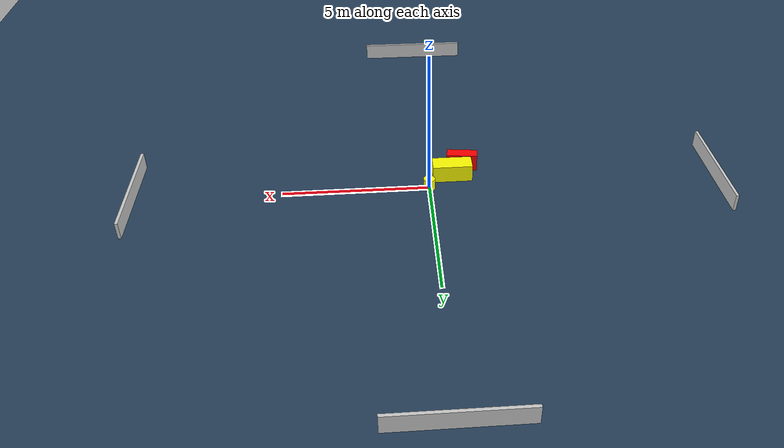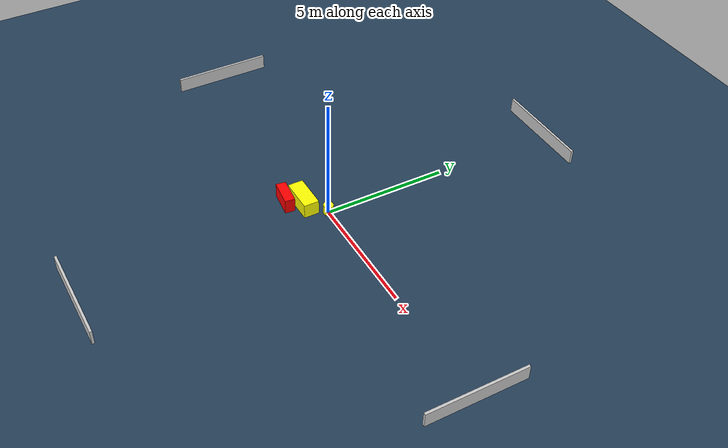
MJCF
<?xml version="1.0" ?>
<mujoco model="generated_environment">
  <option timestep="0.01" integrator="RK4" cone="elliptic"/>
  <default>
    <geom density="1"/>
  </default>
  <asset>
    <texture builtin="gradient" height="3072" name="skybox" rgb1="0.3 0.5 0.7" rgb2="0 0 0" type="skybox" width="512"/>
    <texture builtin="checker" height="300" name="groundplane" rgb1="0.2 0.3 0.4" rgb2="0.1 0.2 0.3" type="2d" width="300"/>
    <material name="groundplane" reflectance="0.2" texrepeat="5 5" texture="groundplane"/>
  </asset>
  <worldbody>
    <light dir="0 0 -1" directional="true" pos="0 0 1.5"/>
    <geom condim="3" friction="0.5 0.005 0.001" material="groundplane" name="floor" pos="0 0 0" size="0 0 0.05" type="plane"/>
    <body name="walls">
      <geom name="wall_1" condim="4" pos="-10.0 0.0 0.3" rgba="0.800000011920929 0.800000011920929 0.800000011920929 1.0" size="0.05 2.0 0.3" type="box"/>
      <geom name="wall_2" condim="4" pos="10.0 0.0 0.3" rgba="0.800000011920929 0.800000011920929 0.800000011920929 1.0" size="0.05 2.0 0.3" type="box"/>
      <geom name="wall_3" condim="4" pos="0.0 -10.0 0.3" rgba="0.800000011920929 0.800000011920929 0.800000011920929 1.0" size="2.0 0.05 0.3" type="box"/>
      <geom name="wall_4" condim="4" pos="0.0 10.0 0.3" rgba="0.800000011920929 0.800000011920929 0.800000011920929 1.0" size="2.0 0.05 0.3" type="box"/>
    </body>
    <body name="robot">
      <joint name="joint_x" type="slide" pos="0 0 0" axis="1 0 0"/>
      <joint name="joint_y" type="slide" pos="0 0 0" axis="0 1 0"/>
      <geom name="robot" type="cylinder" pos="0.0 0.0 0.2" size="0.2 0.2 0.0" mass="5.0" friction="1.0 0.005 0.0001" condim="4" rgba="1.0 1.0 0.0 1.0"/>
    </body>
    <body name="obstacle_1_movable">
      <geom name="obstacle_1_movable" condim="4" pos="-0.8427955163774331 -0.6393089310757071 0.3" euler="0 0 0.10586463021075687" friction="0.0 0.005 0.001" rgba="1.0 1.0 0.0 1.0" size="0.6847096971824466 0.31034315676240415 0.3" type="box" mass="0.1"/>
      <joint type="free"/>
    </body>
    <body name="obstacle_2_static">
      <geom name="obstacle_2_static" condim="4" pos="-1.2462391232716172 -1.2095333404044104 0.3" euler="0 0 83.0715655240083" friction="0.0 0.005 0.001" rgba="1.0 0.0 0.0 1.0" size="0.20057714502691915 0.5316619281244177 0.3" type="box"/>
    </body>
  </worldbody>
  <actuator>
    <motor name="actuator_x" joint="joint_x" gear="1" ctrlrange="-1 1"/>
    <motor name="actuator_y" joint="joint_y" gear="1" ctrlrange="-1 1"/>
  </actuator>
</mujoco>
